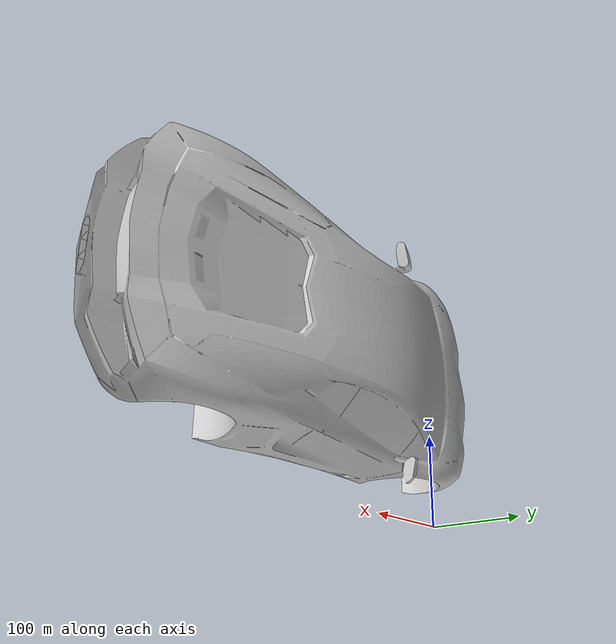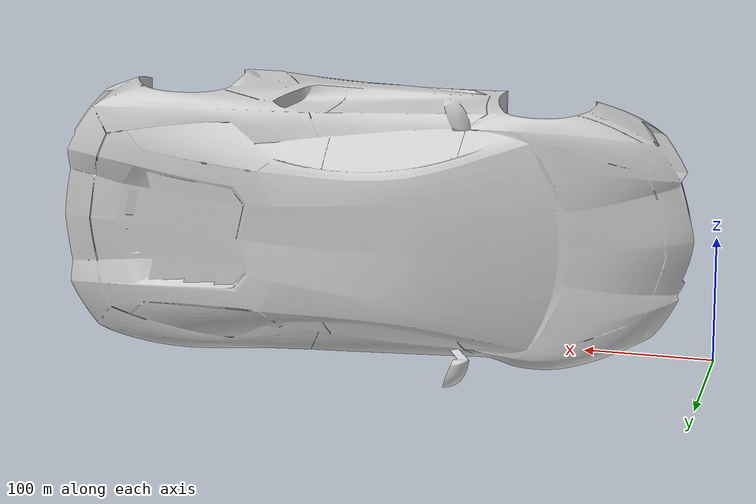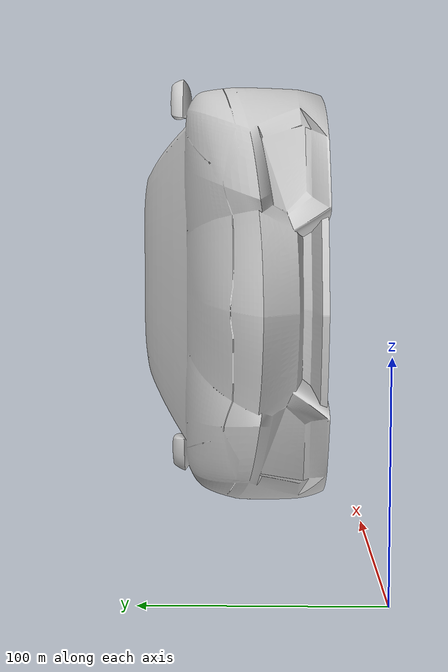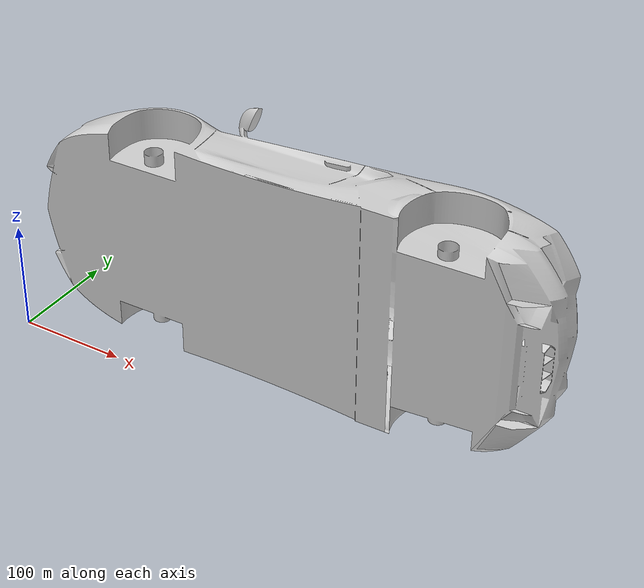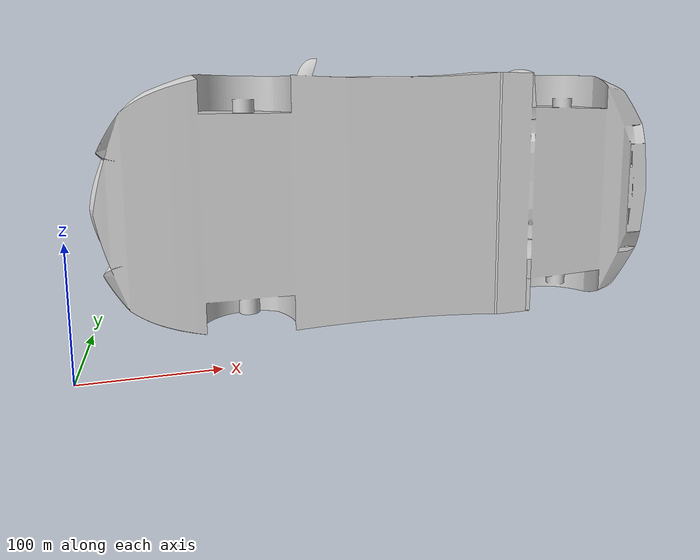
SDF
<?xml version="1.0" ?>
<sdf version="1.8">
  <model name="inspection_car">
    <static>true</static>  <!-- Locks the CAD in place and disables physics calculations -->
    <link name="link">
      <!-- Collision Mesh: simplified or exact CAD -->
      <collision name="collision">
        <geometry>
          <mesh>
            <uri>model://inspection_car/meshes/car_body.stl</uri>
            <scale>1 1 1</scale>
          </mesh>
        </geometry>
      </collision>

      <!-- Visual Mesh: high-res CAD for optical/sensor scanning -->
      <visual name="visual">
        <geometry>
          <mesh>
            <uri>model://inspection_car/meshes/car_body.stl</uri>
            <scale>1 1 1</scale>
          </mesh>
        </geometry>
        <material>
          <ambient>0.8 0.8 0.8 1.0</ambient>
          <diffuse>0.8 0.8 0.8 1.0</diffuse>
          <specular>0.2 0.2 0.2 1.0</specular>
        </material>
      </visual>
    </link>
  </model>
</sdf>
